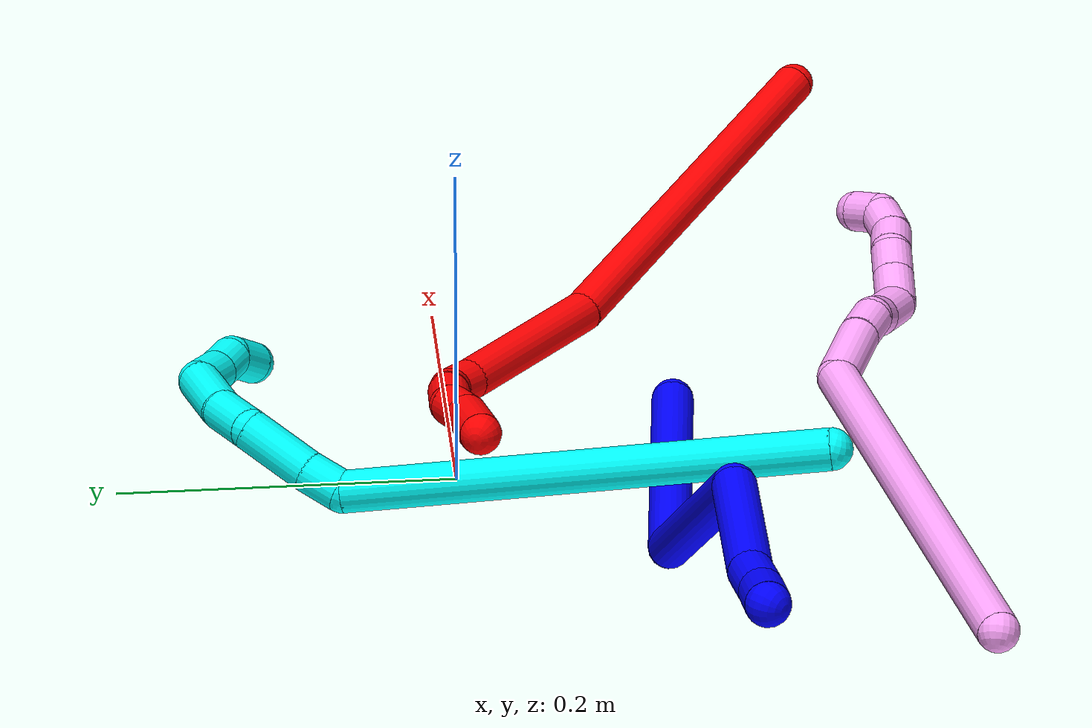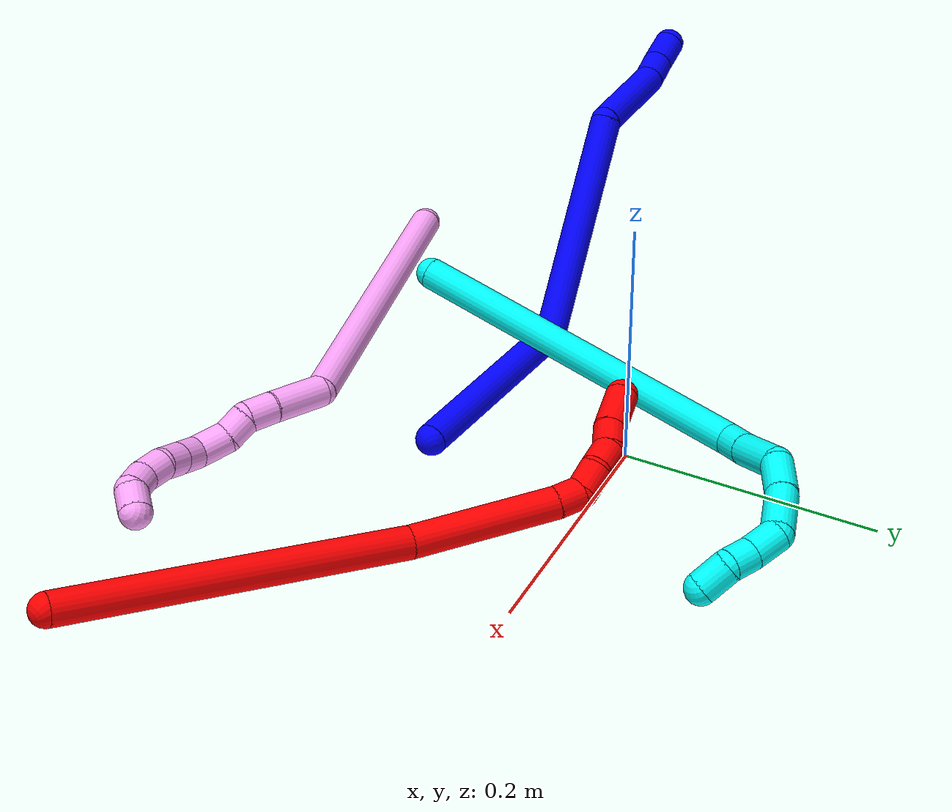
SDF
<sdf version="1.7">
 <world name="default">
  <plugin name="TubeGeneratorPlugin" filename="libtube_generator_plugin.so"/>
  <model name="photoneo_s_sensor">
   <static>1</static>
   <pose>0 0 2 1.57079 1.57079 3.14159</pose>
   <link name="link">
    <inertial><mass>0.1</mass></inertial>
    <sensor name="sensor" type="depth">
     <update_rate>30</update_rate>
     <camera>
      <horizontal_fov>1.22</horizontal_fov>
      <image><width>1920</width><height>1200</height><format>B8G8R8</format></image>
      <clip><near>0.1</near><far>4</far></clip>
      <depth_camera><output>points</output></depth_camera>
     </camera>
     <plugin name="camera_plugin" filename="libgazebo_ros_depth_camera.so">
      <baseline>0.2</baseline>
      <alwaysOn>1</alwaysOn>
      <updateRate>0.0</updateRate>
      <cameraName>camera_ir</cameraName>
      <imageTopicName>/camera/color/image_raw</imageTopicName>
      <cameraInfoTopicName>/camera/color/camera_info</cameraInfoTopicName>
      <depthImageTopicName>/camera/depth/image_raw</depthImageTopicName>
      <depthImageCameraInfoTopicName>/camera/depth/camera_info</depthImageCameraInfoTopicName>
      <pointCloudTopicName>/camera/depth/points</pointCloudTopicName>
      <frameName>fr_optical</frameName>
      <pointCloudCutoff>0.1</pointCloudCutoff>
      <pointCloudCutoffMax>2.0</pointCloudCutoffMax>
      <distortionK1>0</distortionK1>
      <distortionK2>0</distortionK2>
      <distortionK3>0</distortionK3>
      <distortionT1>0</distortionT1>
      <distortionT2>0</distortionT2>
      <CxPrime>0</CxPrime>
      <Cx>0</Cx>
      <Cy>0</Cy>
      <focalLength>0</focalLength>
      <hackBaseline>0</hackBaseline>
     </plugin>
    </sensor>
   </link>
  </model>
  <gravity>0 0 -9.8</gravity>
  <magnetic_field>6e-06 2.3e-05 -4.2e-05</magnetic_field>
  <atmosphere type="adiabatic"/>
  <physics name="default_physics" default="0" type="ode">
   <max_step_size>0.003</max_step_size>
   <real_time_factor>1</real_time_factor>
   <real_time_update_rate>1000</real_time_update_rate>
   <max_contacts>10000</max_contacts>
   <ode>
    <solver>
     <type>quick</type>
     <iters>100</iters>
     <sor>1.3</sor>
     <use_dynamic_moi_rescaling>0</use_dynamic_moi_rescaling>
    </solver>
    <constraints>
     <contact_max_correcting_vel>0</contact_max_correcting_vel>
     <contact_surface_layer>0.001</contact_surface_layer>
     <cfm>0</cfm>
     <erp>0.2</erp>
    </constraints>
   </ode>
  </physics>
  <scene><ambient>0.4 0.4 0.4 1</ambient><background>0.7 0.7 0.7 1</background><shadows>0</shadows></scene>
  <audio><device>default</device></audio>
  <spherical_coordinates>
   <surface_model>EARTH_WGS84</surface_model>
   <latitude_deg>0</latitude_deg>
   <longitude_deg>0</longitude_deg>
   <elevation>0</elevation>
   <heading_deg>0</heading_deg>
  </spherical_coordinates>
  <model name="bin">
   <static>1</static>
   <link name="bottom">
    <collision name="collision-bottom">
     <pose>0 0 -0.01 0 -0 0</pose>
     <geometry><box><size>0.8 0.6 0.02</size></box></geometry>
     <surface>
      <friction><ode><mu>100</mu><mu2>100</mu2></ode></friction>
      <contact><collide_bitmask>65535</collide_bitmask></contact>
     </surface>
    </collision>
   </link>
   <link name="west_wall">
    <collision name="collision-west_wall">
     <pose>-0.41 0 0.1 0 -0 0</pose>
     <geometry><box><size>0.02 0.6 0.2</size></box></geometry>
     <surface>
      <friction><ode><mu>100</mu><mu2>100</mu2></ode></friction>
      <contact><collide_bitmask>65535</collide_bitmask></contact>
     </surface>
    </collision>
   </link>
   <link name="east_wall">
    <collision name="collision-east_wall">
     <pose>0.41 0 0.1 0 -0 0</pose>
     <geometry><box><size>0.02 0.6 0.2</size></box></geometry>
     <surface>
      <friction><ode><mu>100</mu><mu2>100</mu2></ode></friction>
      <contact><collide_bitmask>65535</collide_bitmask></contact>
     </surface>
    </collision>
   </link>
   <link name="south_wall">
    <collision name="collision-south_wall">
     <pose>0 -0.31 0.1 0 -0 0</pose>
     <geometry><box><size>0.8 0.02 0.2</size></box></geometry>
     <surface>
      <friction><ode><mu>100</mu><mu2>100</mu2></ode></friction>
      <contact><collide_bitmask>65535</collide_bitmask></contact>
     </surface>
    </collision>
   </link>
   <link name="north_wall">
    <collision name="collision-north_wall">
     <pose>0 0.31 0.1 0 -0 0</pose>
     <geometry><box><size>0.8 0.02 0.2</size></box></geometry>
     <surface>
      <friction><ode><mu>100</mu><mu2>100</mu2></ode></friction>
      <contact><collide_bitmask>65535</collide_bitmask></contact>
     </surface>
    </collision>
   </link>
  </model>
  <model name="1">
   <static>0</static>
   <link name="1">
    <collision name="collision-cylinder-e_1_1_4">
     <pose>-0.056286 -0.034801 0.053306 0.578381 -0.723989 -0.224393</pose>
     <geometry><cylinder><radius>0.0125</radius><length>0.16995</length></cylinder></geometry>
     <surface>
      <friction><ode><mu>1.16</mu><mu2>1.16</mu2><slip1>0</slip1><slip2>0</slip2></ode></friction>
      <contact><ode><kp>1e+06</kp><kd>1</kd><max_vel>0</max_vel><min_depth>0.001</min_depth></ode></contact>
     </surface>
    </collision>
    <visual name="visual-cylinder-e_1_1_4">
     <pose>-0.056286 -0.034801 0.053306 0.578381 -0.723989 -0.224393</pose>
     <geometry><cylinder><radius>0.0125</radius><length>0.16995</length></cylinder></geometry>
     <material><ambient>0 0 1 1</ambient></material>
    </visual>
    <collision name="collision-cylinder-e_2_4_5">
     <pose>-0.181496 -0.039552 0.16465 -0.477763 -0.811969 0.208612</pose>
     <geometry><cylinder><radius>0.0125</radius><length>0.189968</length></cylinder></geometry>
     <surface>
      <friction><ode><mu>1.16</mu><mu2>1.16</mu2><slip1>0</slip1><slip2>0</slip2></ode></friction>
      <contact><ode><kp>1e+06</kp><kd>1</kd><max_vel>0</max_vel><min_depth>0.001</min_depth></ode></contact>
     </surface>
    </collision>
    <visual name="visual-cylinder-e_2_4_5">
     <pose>-0.181496 -0.039552 0.16465 -0.477763 -0.811969 0.208612</pose>
     <geometry><cylinder><radius>0.0125</radius><length>0.189968</length></cylinder></geometry>
     <material><ambient>0 0 1 1</ambient></material>
    </visual>
    <collision name="collision-cylinder-e_3_5_6">
     <pose>-0.276497 -0.026378 0.253266 0.504272 -0.641344 -0.170712</pose>
     <geometry><cylinder><radius>0.0125</radius><length>0.087175</length></cylinder></geometry>
     <surface>
      <friction><ode><mu>1.16</mu><mu2>1.16</mu2><slip1>0</slip1><slip2>0</slip2></ode></friction>
      <contact><ode><kp>1e+06</kp><kd>1</kd><max_vel>0</max_vel><min_depth>0.001</min_depth></ode></contact>
     </surface>
    </collision>
    <visual name="visual-cylinder-e_3_5_6">
     <pose>-0.276497 -0.026378 0.253266 0.504272 -0.641344 -0.170712</pose>
     <geometry><cylinder><radius>0.0125</radius><length>0.087175</length></cylinder></geometry>
     <material><ambient>0 0 1 1</ambient></material>
    </visual>
    <collision name="collision-cylinder-e_4_6_7">
     <pose>-0.310118 -0.045871 0.293821 0.256671 -0.63148 -0.08426</pose>
     <geometry><cylinder><radius>0.0125</radius><length>0.025556</length></cylinder></geometry>
     <surface>
      <friction><ode><mu>1.16</mu><mu2>1.16</mu2><slip1>0</slip1><slip2>0</slip2></ode></friction>
      <contact><ode><kp>1e+06</kp><kd>1</kd><max_vel>0</max_vel><min_depth>0.001</min_depth></ode></contact>
     </surface>
    </collision>
    <visual name="visual-cylinder-e_4_6_7">
     <pose>-0.310118 -0.045871 0.293821 0.256671 -0.63148 -0.08426</pose>
     <geometry><cylinder><radius>0.0125</radius><length>0.025556</length></cylinder></geometry>
     <material><ambient>0 0 1 1</ambient></material>
    </visual>
    <collision name="collision-cylinder-e_5_7_2">
     <pose>-0.327346 -0.050132 0.313312 0.170937 -0.786934 -0.071102</pose>
     <geometry><cylinder><radius>0.0125</radius><length>0.027351</length></cylinder></geometry>
     <surface>
      <friction><ode><mu>1.16</mu><mu2>1.16</mu2><slip1>0</slip1><slip2>0</slip2></ode></friction>
      <contact><ode><kp>1e+06</kp><kd>1</kd><max_vel>0</max_vel><min_depth>0.001</min_depth></ode></contact>
     </surface>
    </collision>
    <visual name="visual-cylinder-e_5_7_2">
     <pose>-0.327346 -0.050132 0.313312 0.170937 -0.786934 -0.071102</pose>
     <geometry><cylinder><radius>0.0125</radius><length>0.027351</length></cylinder></geometry>
     <material><ambient>0 0 1 1</ambient></material>
    </visual>
    <collision name="collision-sphere-2">
     <pose>-0.337031 -0.051774 0.322826 0 -0 0</pose>
     <geometry><sphere><radius>0.0125</radius></sphere></geometry>
     <surface>
      <friction><ode><mu>1.16</mu><mu2>1.16</mu2><slip1>0</slip1><slip2>0</slip2></ode></friction>
      <contact><ode><kp>1e+06</kp><kd>1</kd><max_vel>0</max_vel><min_depth>0.001</min_depth></ode></contact>
     </surface>
    </collision>
    <visual name="visual-sphere-2">
     <pose>-0.337031 -0.051774 0.322826 0 -0 0</pose>
     <geometry><sphere><radius>0.0125</radius></sphere></geometry>
     <material><ambient>0 0 1 1</ambient></material>
    </visual>
    <collision name="collision-sphere-7">
     <pose>-0.317661 -0.048489 0.303797 0 -0 0</pose>
     <geometry><sphere><radius>0.0125</radius></sphere></geometry>
     <surface>
      <friction><ode><mu>1.16</mu><mu2>1.16</mu2><slip1>0</slip1><slip2>0</slip2></ode></friction>
      <contact><ode><kp>1e+06</kp><kd>1</kd><max_vel>0</max_vel><min_depth>0.001</min_depth></ode></contact>
     </surface>
    </collision>
    <visual name="visual-sphere-7">
     <pose>-0.317661 -0.048489 0.303797 0 -0 0</pose>
     <geometry><sphere><radius>0.0125</radius></sphere></geometry>
     <material><ambient>0 0 1 1</ambient></material>
    </visual>
    <collision name="collision-sphere-6">
     <pose>-0.302575 -0.043253 0.283845 0 -0 0</pose>
     <geometry><sphere><radius>0.0125</radius></sphere></geometry>
     <surface>
      <friction><ode><mu>1.16</mu><mu2>1.16</mu2><slip1>0</slip1><slip2>0</slip2></ode></friction>
      <contact><ode><kp>1e+06</kp><kd>1</kd><max_vel>0</max_vel><min_depth>0.001</min_depth></ode></contact>
     </surface>
    </collision>
    <visual name="visual-sphere-6">
     <pose>-0.302575 -0.043253 0.283845 0 -0 0</pose>
     <geometry><sphere><radius>0.0125</radius></sphere></geometry>
     <material><ambient>0 0 1 1</ambient></material>
    </visual>
    <collision name="collision-sphere-5">
     <pose>-0.25042 -0.009502 0.222687 0 -0 0</pose>
     <geometry><sphere><radius>0.0125</radius></sphere></geometry>
     <surface>
      <friction><ode><mu>1.16</mu><mu2>1.16</mu2><slip1>0</slip1><slip2>0</slip2></ode></friction>
      <contact><ode><kp>1e+06</kp><kd>1</kd><max_vel>0</max_vel><min_depth>0.001</min_depth></ode></contact>
     </surface>
    </collision>
    <visual name="visual-sphere-5">
     <pose>-0.25042 -0.009502 0.222687 0 -0 0</pose>
     <geometry><sphere><radius>0.0125</radius></sphere></geometry>
     <material><ambient>0 0 1 1</ambient></material>
    </visual>
    <collision name="collision-sphere-1">
     <geometry><sphere><radius>0.0125</radius></sphere></geometry>
     <surface>
      <friction><ode><mu>1.16</mu><mu2>1.16</mu2><slip1>0</slip1><slip2>0</slip2></ode></friction>
      <contact><ode><kp>1e+06</kp><kd>1</kd><max_vel>0</max_vel><min_depth>0.001</min_depth></ode></contact>
     </surface>
    </collision>
    <visual name="visual-sphere-1">
     <geometry><sphere><radius>0.0125</radius></sphere></geometry>
     <material><ambient>0 0 1 1</ambient></material>
    </visual>
    <collision name="collision-sphere-4">
     <pose>-0.112571 -0.069603 0.106612 0 -0 0</pose>
     <geometry><sphere><radius>0.0125</radius></sphere></geometry>
     <surface>
      <friction><ode><mu>1.16</mu><mu2>1.16</mu2><slip1>0</slip1><slip2>0</slip2></ode></friction>
      <contact><ode><kp>1e+06</kp><kd>1</kd><max_vel>0</max_vel><min_depth>0.001</min_depth></ode></contact>
     </surface>
    </collision>
    <visual name="visual-sphere-4">
     <pose>-0.112571 -0.069603 0.106612 0 -0 0</pose>
     <geometry><sphere><radius>0.0125</radius></sphere></geometry>
     <material><ambient>0 0 1 1</ambient></material>
    </visual>
    <inertial>
     <pose>-0.170053 -0.036542 0.156989 0 -0 0</pose>
     <mass>0.5</mass>
     <inertia>
      <ixx>0.000722</ixx>
      <ixy>0</ixy>
      <ixz>0</ixz>
      <iyy>0.000975</iyy>
      <iyz>0</iyz>
      <izz>0.00077</izz>
     </inertia>
    </inertial>
   </link>
   <pose>0.062273 -0.133769 0.012396 1.56387 0.542197 -0.79775</pose>
  </model>
  <model name="2">
   <static>0</static>
   <link name="2">
    <collision name="collision-cylinder-e_1_1_4">
     <pose>-0.017727 -0.054777 -0.120022 2.71344 -0.133564 -0.596884</pose>
     <geometry><cylinder><radius>0.0125</radius><length>0.266233</length></cylinder></geometry>
     <surface>
      <friction><ode><mu>1.16</mu><mu2>1.16</mu2><slip1>0</slip1><slip2>0</slip2></ode></friction>
      <contact><ode><kp>1e+06</kp><kd>1</kd><max_vel>0</max_vel><min_depth>0.001</min_depth></ode></contact>
     </surface>
    </collision>
    <visual name="visual-cylinder-e_1_1_4">
     <pose>-0.017727 -0.054777 -0.120022 2.71344 -0.133564 -0.596884</pose>
     <geometry><cylinder><radius>0.0125</radius><length>0.266233</length></cylinder></geometry>
     <material><ambient>1 0 0 1</ambient></material>
    </visual>
    <collision name="collision-cylinder-e_2_4_5">
     <pose>-0.030833 -0.13234 -0.29176 2.72657 0.081587 0.382971</pose>
     <geometry><cylinder><radius>0.0125</radius><length>0.113404</length></cylinder></geometry>
     <surface>
      <friction><ode><mu>1.16</mu><mu2>1.16</mu2><slip1>0</slip1><slip2>0</slip2></ode></friction>
      <contact><ode><kp>1e+06</kp><kd>1</kd><max_vel>0</max_vel><min_depth>0.001</min_depth></ode></contact>
     </surface>
    </collision>
    <visual name="visual-cylinder-e_2_4_5">
     <pose>-0.030833 -0.13234 -0.29176 2.72657 0.081587 0.382971</pose>
     <geometry><cylinder><radius>0.0125</radius><length>0.113404</length></cylinder></geometry>
     <material><ambient>1 0 0 1</ambient></material>
    </visual>
    <collision name="collision-cylinder-e_3_5_6">
     <pose>-0.024493 -0.158212 -0.353185 2.83396 0.167123 0.9906</pose>
     <geometry><cylinder><radius>0.0125</radius><length>0.020664</length></cylinder></geometry>
     <surface>
      <friction><ode><mu>1.16</mu><mu2>1.16</mu2><slip1>0</slip1><slip2>0</slip2></ode></friction>
      <contact><ode><kp>1e+06</kp><kd>1</kd><max_vel>0</max_vel><min_depth>0.001</min_depth></ode></contact>
     </surface>
    </collision>
    <visual name="visual-cylinder-e_3_5_6">
     <pose>-0.024493 -0.158212 -0.353185 2.83396 0.167123 0.9906</pose>
     <geometry><cylinder><radius>0.0125</radius><length>0.020664</length></cylinder></geometry>
     <material><ambient>1 0 0 1</ambient></material>
    </visual>
    <collision name="collision-cylinder-e_4_6_7">
     <pose>-0.021407 -0.158072 -0.37336 -2.84266 0.12422 -0.783292</pose>
     <geometry><cylinder><radius>0.0125</radius><length>0.022071</length></cylinder></geometry>
     <surface>
      <friction><ode><mu>1.16</mu><mu2>1.16</mu2><slip1>0</slip1><slip2>0</slip2></ode></friction>
      <contact><ode><kp>1e+06</kp><kd>1</kd><max_vel>0</max_vel><min_depth>0.001</min_depth></ode></contact>
     </surface>
    </collision>
    <visual name="visual-cylinder-e_4_6_7">
     <pose>-0.021407 -0.158072 -0.37336 -2.84266 0.12422 -0.783292</pose>
     <geometry><cylinder><radius>0.0125</radius><length>0.022071</length></cylinder></geometry>
     <material><ambient>1 0 0 1</ambient></material>
    </visual>
    <collision name="collision-cylinder-e_5_7_8">
     <pose>-0.021702 -0.152204 -0.393863 -2.8841 -0.158829 1.10234</pose>
     <geometry><cylinder><radius>0.0125</radius><length>0.021024</length></cylinder></geometry>
     <surface>
      <friction><ode><mu>1.16</mu><mu2>1.16</mu2><slip1>0</slip1><slip2>0</slip2></ode></friction>
      <contact><ode><kp>1e+06</kp><kd>1</kd><max_vel>0</max_vel><min_depth>0.001</min_depth></ode></contact>
     </surface>
    </collision>
    <visual name="visual-cylinder-e_5_7_8">
     <pose>-0.021702 -0.152204 -0.393863 -2.8841 -0.158829 1.10234</pose>
     <geometry><cylinder><radius>0.0125</radius><length>0.021024</length></cylinder></geometry>
     <material><ambient>1 0 0 1</ambient></material>
    </visual>
    <collision name="collision-cylinder-e_6_8_9">
     <pose>-0.026413 -0.14331 -0.411931 -2.48026 -0.291061 0.807082</pose>
     <geometry><cylinder><radius>0.0125</radius><length>0.021247</length></cylinder></geometry>
     <surface>
      <friction><ode><mu>1.16</mu><mu2>1.16</mu2><slip1>0</slip1><slip2>0</slip2></ode></friction>
      <contact><ode><kp>1e+06</kp><kd>1</kd><max_vel>0</max_vel><min_depth>0.001</min_depth></ode></contact>
     </surface>
    </collision>
    <visual name="visual-cylinder-e_6_8_9">
     <pose>-0.026413 -0.14331 -0.411931 -2.48026 -0.291061 0.807082</pose>
     <geometry><cylinder><radius>0.0125</radius><length>0.021247</length></cylinder></geometry>
     <material><ambient>1 0 0 1</ambient></material>
    </visual>
    <collision name="collision-cylinder-e_7_9_2">
     <pose>-0.033167 -0.129655 -0.435582 -2.69885 -0.211156 0.88014</pose>
     <geometry><cylinder><radius>0.0125</radius><length>0.035356</length></cylinder></geometry>
     <surface>
      <friction><ode><mu>1.16</mu><mu2>1.16</mu2><slip1>0</slip1><slip2>0</slip2></ode></friction>
      <contact><ode><kp>1e+06</kp><kd>1</kd><max_vel>0</max_vel><min_depth>0.001</min_depth></ode></contact>
     </surface>
    </collision>
    <visual name="visual-cylinder-e_7_9_2">
     <pose>-0.033167 -0.129655 -0.435582 -2.69885 -0.211156 0.88014</pose>
     <geometry><cylinder><radius>0.0125</radius><length>0.035356</length></cylinder></geometry>
     <material><ambient>1 0 0 1</ambient></material>
    </visual>
    <collision name="collision-sphere-2">
     <pose>-0.036872 -0.122249 -0.4512 0 -0 0</pose>
     <geometry><sphere><radius>0.0125</radius></sphere></geometry>
     <surface>
      <friction><ode><mu>1.16</mu><mu2>1.16</mu2><slip1>0</slip1><slip2>0</slip2></ode></friction>
      <contact><ode><kp>1e+06</kp><kd>1</kd><max_vel>0</max_vel><min_depth>0.001</min_depth></ode></contact>
     </surface>
    </collision>
    <visual name="visual-sphere-2">
     <pose>-0.036872 -0.122249 -0.4512 0 -0 0</pose>
     <geometry><sphere><radius>0.0125</radius></sphere></geometry>
     <material><ambient>1 0 0 1</ambient></material>
    </visual>
    <collision name="collision-sphere-9">
     <pose>-0.029462 -0.13706 -0.419963 0 -0 0</pose>
     <geometry><sphere><radius>0.0125</radius></sphere></geometry>
     <surface>
      <friction><ode><mu>1.16</mu><mu2>1.16</mu2><slip1>0</slip1><slip2>0</slip2></ode></friction>
      <contact><ode><kp>1e+06</kp><kd>1</kd><max_vel>0</max_vel><min_depth>0.001</min_depth></ode></contact>
     </surface>
    </collision>
    <visual name="visual-sphere-9">
     <pose>-0.029462 -0.13706 -0.419963 0 -0 0</pose>
     <geometry><sphere><radius>0.0125</radius></sphere></geometry>
     <material><ambient>1 0 0 1</ambient></material>
    </visual>
    <collision name="collision-sphere-4">
     <pose>-0.035453 -0.109553 -0.240044 0 -0 0</pose>
     <geometry><sphere><radius>0.0125</radius></sphere></geometry>
     <surface>
      <friction><ode><mu>1.16</mu><mu2>1.16</mu2><slip1>0</slip1><slip2>0</slip2></ode></friction>
      <contact><ode><kp>1e+06</kp><kd>1</kd><max_vel>0</max_vel><min_depth>0.001</min_depth></ode></contact>
     </surface>
    </collision>
    <visual name="visual-sphere-4">
     <pose>-0.035453 -0.109553 -0.240044 0 -0 0</pose>
     <geometry><sphere><radius>0.0125</radius></sphere></geometry>
     <material><ambient>1 0 0 1</ambient></material>
    </visual>
    <collision name="collision-sphere-1">
     <geometry><sphere><radius>0.0125</radius></sphere></geometry>
     <surface>
      <friction><ode><mu>1.16</mu><mu2>1.16</mu2><slip1>0</slip1><slip2>0</slip2></ode></friction>
      <contact><ode><kp>1e+06</kp><kd>1</kd><max_vel>0</max_vel><min_depth>0.001</min_depth></ode></contact>
     </surface>
    </collision>
    <visual name="visual-sphere-1">
     <geometry><sphere><radius>0.0125</radius></sphere></geometry>
     <material><ambient>1 0 0 1</ambient></material>
    </visual>
    <collision name="collision-sphere-8">
     <pose>-0.023365 -0.149561 -0.4039 0 -0 0</pose>
     <geometry><sphere><radius>0.0125</radius></sphere></geometry>
     <surface>
      <friction><ode><mu>1.16</mu><mu2>1.16</mu2><slip1>0</slip1><slip2>0</slip2></ode></friction>
      <contact><ode><kp>1e+06</kp><kd>1</kd><max_vel>0</max_vel><min_depth>0.001</min_depth></ode></contact>
     </surface>
    </collision>
    <visual name="visual-sphere-8">
     <pose>-0.023365 -0.149561 -0.4039 0 -0 0</pose>
     <geometry><sphere><radius>0.0125</radius></sphere></geometry>
     <material><ambient>1 0 0 1</ambient></material>
    </visual>
    <collision name="collision-sphere-5">
     <pose>-0.026212 -0.155127 -0.343476 0 -0 0</pose>
     <geometry><sphere><radius>0.0125</radius></sphere></geometry>
     <surface>
      <friction><ode><mu>1.16</mu><mu2>1.16</mu2><slip1>0</slip1><slip2>0</slip2></ode></friction>
      <contact><ode><kp>1e+06</kp><kd>1</kd><max_vel>0</max_vel><min_depth>0.001</min_depth></ode></contact>
     </surface>
    </collision>
    <visual name="visual-sphere-5">
     <pose>-0.026212 -0.155127 -0.343476 0 -0 0</pose>
     <geometry><sphere><radius>0.0125</radius></sphere></geometry>
     <material><ambient>1 0 0 1</ambient></material>
    </visual>
    <collision name="collision-sphere-6">
     <pose>-0.022774 -0.161297 -0.362895 0 -0 0</pose>
     <geometry><sphere><radius>0.0125</radius></sphere></geometry>
     <surface>
      <friction><ode><mu>1.16</mu><mu2>1.16</mu2><slip1>0</slip1><slip2>0</slip2></ode></friction>
      <contact><ode><kp>1e+06</kp><kd>1</kd><max_vel>0</max_vel><min_depth>0.001</min_depth></ode></contact>
     </surface>
    </collision>
    <visual name="visual-sphere-6">
     <pose>-0.022774 -0.161297 -0.362895 0 -0 0</pose>
     <geometry><sphere><radius>0.0125</radius></sphere></geometry>
     <material><ambient>1 0 0 1</ambient></material>
    </visual>
    <collision name="collision-sphere-7">
     <pose>-0.02004 -0.154847 -0.383825 0 -0 0</pose>
     <geometry><sphere><radius>0.0125</radius></sphere></geometry>
     <surface>
      <friction><ode><mu>1.16</mu><mu2>1.16</mu2><slip1>0</slip1><slip2>0</slip2></ode></friction>
      <contact><ode><kp>1e+06</kp><kd>1</kd><max_vel>0</max_vel><min_depth>0.001</min_depth></ode></contact>
     </surface>
    </collision>
    <visual name="visual-sphere-7">
     <pose>-0.02004 -0.154847 -0.383825 0 -0 0</pose>
     <geometry><sphere><radius>0.0125</radius></sphere></geometry>
     <material><ambient>1 0 0 1</ambient></material>
    </visual>
    <inertial>
     <pose>-0.022769 -0.094357 -0.226026 0 -0 0</pose>
     <mass>0.5</mass>
     <inertia>
      <ixx>0.00059</ixx>
      <ixy>0</ixy>
      <ixz>0</ixz>
      <iyy>-0.002091</iyy>
      <iyz>0</iyz>
      <izz>0.000865</izz>
     </inertia>
    </inertial>
   </link>
   <pose>0.388501 -0.245658 0.055559 1.90335 -1.01977 0.950871</pose>
  </model>
  <model name="3">
   <static>0</static>
   <link name="3">
    <collision name="collision-cylinder-e_1_1_4">
     <pose>0.01966 0.128923 -0.058923 -1.99949 0.137818 -0.214039</pose>
     <geometry><cylinder><radius>0.0125</radius><length>0.286214</length></cylinder></geometry>
     <surface>
      <friction><ode><mu>1.16</mu><mu2>1.16</mu2><slip1>0</slip1><slip2>0</slip2></ode></friction>
      <contact><ode><kp>1e+06</kp><kd>1</kd><max_vel>0</max_vel><min_depth>0.001</min_depth></ode></contact>
     </surface>
    </collision>
    <visual name="visual-cylinder-e_1_1_4">
     <pose>0.01966 0.128923 -0.058923 -1.99949 0.137818 -0.214039</pose>
     <geometry><cylinder><radius>0.0125</radius><length>0.286214</length></cylinder></geometry>
     <material><ambient>0.003922 1 0.996078 1</ambient></material>
    </visual>
    <collision name="collision-cylinder-e_2_4_5">
     <pose>0.04419 0.268943 -0.116043 -1.40968 0.408697 -0.348971</pose>
     <geometry><cylinder><radius>0.0125</radius><length>0.024504</length></cylinder></geometry>
     <surface>
      <friction><ode><mu>1.16</mu><mu2>1.16</mu2><slip1>0</slip1><slip2>0</slip2></ode></friction>
      <contact><ode><kp>1e+06</kp><kd>1</kd><max_vel>0</max_vel><min_depth>0.001</min_depth></ode></contact>
     </surface>
    </collision>
    <visual name="visual-cylinder-e_2_4_5">
     <pose>0.04419 0.268943 -0.116043 -1.40968 0.408697 -0.348971</pose>
     <geometry><cylinder><radius>0.0125</radius><length>0.024504</length></cylinder></geometry>
     <material><ambient>0.003922 1 0.996078 1</ambient></material>
    </visual>
    <collision name="collision-cylinder-e_3_5_6">
     <pose>0.05662 0.300013 -0.108931 -1.31103 0.350721 -0.270814</pose>
     <geometry><cylinder><radius>0.0125</radius><length>0.044011</length></cylinder></geometry>
     <surface>
      <friction><ode><mu>1.16</mu><mu2>1.16</mu2><slip1>0</slip1><slip2>0</slip2></ode></friction>
      <contact><ode><kp>1e+06</kp><kd>1</kd><max_vel>0</max_vel><min_depth>0.001</min_depth></ode></contact>
     </surface>
    </collision>
    <visual name="visual-cylinder-e_3_5_6">
     <pose>0.05662 0.300013 -0.108931 -1.31103 0.350721 -0.270814</pose>
     <geometry><cylinder><radius>0.0125</radius><length>0.044011</length></cylinder></geometry>
     <material><ambient>0.003922 1 0.996078 1</ambient></material>
    </visual>
    <collision name="collision-cylinder-e_4_6_7">
     <pose>0.077767 0.32932 -0.102804 -1.48327 0.96703 -0.896709</pose>
     <geometry><cylinder><radius>0.0125</radius><length>0.033009</length></cylinder></geometry>
     <surface>
      <friction><ode><mu>1.16</mu><mu2>1.16</mu2><slip1>0</slip1><slip2>0</slip2></ode></friction>
      <contact><ode><kp>1e+06</kp><kd>1</kd><max_vel>0</max_vel><min_depth>0.001</min_depth></ode></contact>
     </surface>
    </collision>
    <visual name="visual-cylinder-e_4_6_7">
     <pose>0.077767 0.32932 -0.102804 -1.48327 0.96703 -0.896709</pose>
     <geometry><cylinder><radius>0.0125</radius><length>0.033009</length></cylinder></geometry>
     <material><ambient>0.003922 1 0.996078 1</ambient></material>
    </visual>
    <collision name="collision-cylinder-e_5_7_8">
     <pose>0.11027 0.347458 -0.098783 -1.22199 1.11098 -0.820163</pose>
     <geometry><cylinder><radius>0.0125</radius><length>0.042218</length></cylinder></geometry>
     <surface>
      <friction><ode><mu>1.16</mu><mu2>1.16</mu2><slip1>0</slip1><slip2>0</slip2></ode></friction>
      <contact><ode><kp>1e+06</kp><kd>1</kd><max_vel>0</max_vel><min_depth>0.001</min_depth></ode></contact>
     </surface>
    </collision>
    <visual name="visual-cylinder-e_5_7_8">
     <pose>0.11027 0.347458 -0.098783 -1.22199 1.11098 -0.820163</pose>
     <geometry><cylinder><radius>0.0125</radius><length>0.042218</length></cylinder></geometry>
     <material><ambient>0.003922 1 0.996078 1</ambient></material>
    </visual>
    <collision name="collision-cylinder-e_6_8_9">
     <pose>0.140746 0.352133 -0.092634 0.9509 1.15729 0.648858</pose>
     <geometry><cylinder><radius>0.0125</radius><length>0.025248</length></cylinder></geometry>
     <surface>
      <friction><ode><mu>1.16</mu><mu2>1.16</mu2><slip1>0</slip1><slip2>0</slip2></ode></friction>
      <contact><ode><kp>1e+06</kp><kd>1</kd><max_vel>0</max_vel><min_depth>0.001</min_depth></ode></contact>
     </surface>
    </collision>
    <visual name="visual-cylinder-e_6_8_9">
     <pose>0.140746 0.352133 -0.092634 0.9509 1.15729 0.648858</pose>
     <geometry><cylinder><radius>0.0125</radius><length>0.025248</length></cylinder></geometry>
     <material><ambient>0.003922 1 0.996078 1</ambient></material>
    </visual>
    <collision name="collision-cylinder-e_7_9_10">
     <pose>0.161081 0.345137 -0.085636 0.616074 1.05602 0.366961</pose>
     <geometry><cylinder><radius>0.0125</radius><length>0.020162</length></cylinder></geometry>
     <surface>
      <friction><ode><mu>1.16</mu><mu2>1.16</mu2><slip1>0</slip1><slip2>0</slip2></ode></friction>
      <contact><ode><kp>1e+06</kp><kd>1</kd><max_vel>0</max_vel><min_depth>0.001</min_depth></ode></contact>
     </surface>
    </collision>
    <visual name="visual-cylinder-e_7_9_10">
     <pose>0.161081 0.345137 -0.085636 0.616074 1.05602 0.366961</pose>
     <geometry><cylinder><radius>0.0125</radius><length>0.020162</length></cylinder></geometry>
     <material><ambient>0.003922 1 0.996078 1</ambient></material>
    </visual>
    <collision name="collision-cylinder-e_8_10_2">
     <pose>0.180012 0.33543 -0.082921 1.76367 0.969465 1.13784</pose>
     <geometry><cylinder><radius>0.0125</radius><length>0.024634</length></cylinder></geometry>
     <surface>
      <friction><ode><mu>1.16</mu><mu2>1.16</mu2><slip1>0</slip1><slip2>0</slip2></ode></friction>
      <contact><ode><kp>1e+06</kp><kd>1</kd><max_vel>0</max_vel><min_depth>0.001</min_depth></ode></contact>
     </surface>
    </collision>
    <visual name="visual-cylinder-e_8_10_2">
     <pose>0.180012 0.33543 -0.082921 1.76367 0.969465 1.13784</pose>
     <geometry><cylinder><radius>0.0125</radius><length>0.024634</length></cylinder></geometry>
     <material><ambient>0.003922 1 0.996078 1</ambient></material>
    </visual>
    <collision name="collision-sphere-2">
     <pose>0.190168 0.328591 -0.084257 0 -0 0</pose>
     <geometry><sphere><radius>0.0125</radius></sphere></geometry>
     <surface>
      <friction><ode><mu>1.16</mu><mu2>1.16</mu2><slip1>0</slip1><slip2>0</slip2></ode></friction>
      <contact><ode><kp>1e+06</kp><kd>1</kd><max_vel>0</max_vel><min_depth>0.001</min_depth></ode></contact>
     </surface>
    </collision>
    <visual name="visual-sphere-2">
     <pose>0.190168 0.328591 -0.084257 0 -0 0</pose>
     <geometry><sphere><radius>0.0125</radius></sphere></geometry>
     <material><ambient>0.003922 1 0.996078 1</ambient></material>
    </visual>
    <collision name="collision-sphere-10">
     <pose>0.169855 0.342269 -0.081586 0 -0 0</pose>
     <geometry><sphere><radius>0.0125</radius></sphere></geometry>
     <surface>
      <friction><ode><mu>1.16</mu><mu2>1.16</mu2><slip1>0</slip1><slip2>0</slip2></ode></friction>
      <contact><ode><kp>1e+06</kp><kd>1</kd><max_vel>0</max_vel><min_depth>0.001</min_depth></ode></contact>
     </surface>
    </collision>
    <visual name="visual-sphere-10">
     <pose>0.169855 0.342269 -0.081586 0 -0 0</pose>
     <geometry><sphere><radius>0.0125</radius></sphere></geometry>
     <material><ambient>0.003922 1 0.996078 1</ambient></material>
    </visual>
    <collision name="collision-sphere-9">
     <pose>0.152306 0.348005 -0.089687 0 -0 0</pose>
     <geometry><sphere><radius>0.0125</radius></sphere></geometry>
     <surface>
      <friction><ode><mu>1.16</mu><mu2>1.16</mu2><slip1>0</slip1><slip2>0</slip2></ode></friction>
      <contact><ode><kp>1e+06</kp><kd>1</kd><max_vel>0</max_vel><min_depth>0.001</min_depth></ode></contact>
     </surface>
    </collision>
    <visual name="visual-sphere-9">
     <pose>0.152306 0.348005 -0.089687 0 -0 0</pose>
     <geometry><sphere><radius>0.0125</radius></sphere></geometry>
     <material><ambient>0.003922 1 0.996078 1</ambient></material>
    </visual>
    <collision name="collision-sphere-4">
     <pose>0.039321 0.257846 -0.117847 0 -0 0</pose>
     <geometry><sphere><radius>0.0125</radius></sphere></geometry>
     <surface>
      <friction><ode><mu>1.16</mu><mu2>1.16</mu2><slip1>0</slip1><slip2>0</slip2></ode></friction>
      <contact><ode><kp>1e+06</kp><kd>1</kd><max_vel>0</max_vel><min_depth>0.001</min_depth></ode></contact>
     </surface>
    </collision>
    <visual name="visual-sphere-4">
     <pose>0.039321 0.257846 -0.117847 0 -0 0</pose>
     <geometry><sphere><radius>0.0125</radius></sphere></geometry>
     <material><ambient>0.003922 1 0.996078 1</ambient></material>
    </visual>
    <collision name="collision-sphere-1">
     <geometry><sphere><radius>0.0125</radius></sphere></geometry>
     <surface>
      <friction><ode><mu>1.16</mu><mu2>1.16</mu2><slip1>0</slip1><slip2>0</slip2></ode></friction>
      <contact><ode><kp>1e+06</kp><kd>1</kd><max_vel>0</max_vel><min_depth>0.001</min_depth></ode></contact>
     </surface>
    </collision>
    <visual name="visual-sphere-1">
     <geometry><sphere><radius>0.0125</radius></sphere></geometry>
     <material><ambient>0.003922 1 0.996078 1</ambient></material>
    </visual>
    <collision name="collision-sphere-8">
     <pose>0.129186 0.356262 -0.095581 0 -0 0</pose>
     <geometry><sphere><radius>0.0125</radius></sphere></geometry>
     <surface>
      <friction><ode><mu>1.16</mu><mu2>1.16</mu2><slip1>0</slip1><slip2>0</slip2></ode></friction>
      <contact><ode><kp>1e+06</kp><kd>1</kd><max_vel>0</max_vel><min_depth>0.001</min_depth></ode></contact>
     </surface>
    </collision>
    <visual name="visual-sphere-8">
     <pose>0.129186 0.356262 -0.095581 0 -0 0</pose>
     <geometry><sphere><radius>0.0125</radius></sphere></geometry>
     <material><ambient>0.003922 1 0.996078 1</ambient></material>
    </visual>
    <collision name="collision-sphere-5">
     <pose>0.049059 0.28004 -0.114239 0 -0 0</pose>
     <geometry><sphere><radius>0.0125</radius></sphere></geometry>
     <surface>
      <friction><ode><mu>1.16</mu><mu2>1.16</mu2><slip1>0</slip1><slip2>0</slip2></ode></friction>
      <contact><ode><kp>1e+06</kp><kd>1</kd><max_vel>0</max_vel><min_depth>0.001</min_depth></ode></contact>
     </surface>
    </collision>
    <visual name="visual-sphere-5">
     <pose>0.049059 0.28004 -0.114239 0 -0 0</pose>
     <geometry><sphere><radius>0.0125</radius></sphere></geometry>
     <material><ambient>0.003922 1 0.996078 1</ambient></material>
    </visual>
    <collision name="collision-sphere-6">
     <pose>0.06418 0.319986 -0.103623 0 -0 0</pose>
     <geometry><sphere><radius>0.0125</radius></sphere></geometry>
     <surface>
      <friction><ode><mu>1.16</mu><mu2>1.16</mu2><slip1>0</slip1><slip2>0</slip2></ode></friction>
      <contact><ode><kp>1e+06</kp><kd>1</kd><max_vel>0</max_vel><min_depth>0.001</min_depth></ode></contact>
     </surface>
    </collision>
    <visual name="visual-sphere-6">
     <pose>0.06418 0.319986 -0.103623 0 -0 0</pose>
     <geometry><sphere><radius>0.0125</radius></sphere></geometry>
     <material><ambient>0.003922 1 0.996078 1</ambient></material>
    </visual>
    <collision name="collision-sphere-7">
     <pose>0.091353 0.338655 -0.101984 0 -0 0</pose>
     <geometry><sphere><radius>0.0125</radius></sphere></geometry>
     <surface>
      <friction><ode><mu>1.16</mu><mu2>1.16</mu2><slip1>0</slip1><slip2>0</slip2></ode></friction>
      <contact><ode><kp>1e+06</kp><kd>1</kd><max_vel>0</max_vel><min_depth>0.001</min_depth></ode></contact>
     </surface>
    </collision>
    <visual name="visual-sphere-7">
     <pose>0.091353 0.338655 -0.101984 0 -0 0</pose>
     <geometry><sphere><radius>0.0125</radius></sphere></geometry>
     <material><ambient>0.003922 1 0.996078 1</ambient></material>
    </visual>
    <inertial>
     <pose>0.05532 0.212691 -0.076349 0 -0 0</pose>
     <mass>0.5</mass>
     <inertia>
      <ixx>0.001514</ixx>
      <ixy>0</ixy>
      <ixz>0</ixz>
      <iyy>-0.001121</iyy>
      <iyz>0</iyz>
      <izz>-0.00208</izz>
     </inertia>
    </inertial>
   </link>
   <pose>-0.082074 -0.209698 0.057567 0.323174 0.367483 -0.075224</pose>
  </model>
  <model name="4">
   <static>0</static>
   <link name="4">
    <collision name="collision-cylinder-e_1_1_4">
     <pose>0.101277 -0.002772 -0.096475 3.11286 0.80947 3.07455</pose>
     <geometry><cylinder><radius>0.0125</radius><length>0.279802</length></cylinder></geometry>
     <surface>
      <friction><ode><mu>1.16</mu><mu2>1.16</mu2><slip1>0</slip1><slip2>0</slip2></ode></friction>
      <contact><ode><kp>1e+06</kp><kd>1</kd><max_vel>0</max_vel><min_depth>0.001</min_depth></ode></contact>
     </surface>
    </collision>
    <visual name="visual-cylinder-e_1_1_4">
     <pose>0.101277 -0.002772 -0.096475 3.11286 0.80947 3.07455</pose>
     <geometry><cylinder><radius>0.0125</radius><length>0.279802</length></cylinder></geometry>
     <material><ambient>1 0.65098 0.996078 1</ambient></material>
    </visual>
    <collision name="collision-cylinder-e_2_4_5">
     <pose>0.211466 0.005315 -0.210894 -2.59732 0.401753 -1.26073</pose>
     <geometry><cylinder><radius>0.0125</radius><length>0.045576</length></cylinder></geometry>
     <surface>
      <friction><ode><mu>1.16</mu><mu2>1.16</mu2><slip1>0</slip1><slip2>0</slip2></ode></friction>
      <contact><ode><kp>1e+06</kp><kd>1</kd><max_vel>0</max_vel><min_depth>0.001</min_depth></ode></contact>
     </surface>
    </collision>
    <visual name="visual-cylinder-e_2_4_5">
     <pose>0.211466 0.005315 -0.210894 -2.59732 0.401753 -1.26073</pose>
     <geometry><cylinder><radius>0.0125</radius><length>0.045576</length></cylinder></geometry>
     <material><ambient>1 0.65098 0.996078 1</ambient></material>
    </visual>
    <collision name="collision-cylinder-e_3_5_6">
     <pose>0.225141 0.022723 -0.237348 -2.48587 0.417575 -1.11419</pose>
     <geometry><cylinder><radius>0.0125</radius><length>0.023496</length></cylinder></geometry>
     <surface>
      <friction><ode><mu>1.16</mu><mu2>1.16</mu2><slip1>0</slip1><slip2>0</slip2></ode></friction>
      <contact><ode><kp>1e+06</kp><kd>1</kd><max_vel>0</max_vel><min_depth>0.001</min_depth></ode></contact>
     </surface>
    </collision>
    <visual name="visual-cylinder-e_3_5_6">
     <pose>0.225141 0.022723 -0.237348 -2.48587 0.417575 -1.11419</pose>
     <geometry><cylinder><radius>0.0125</radius><length>0.023496</length></cylinder></geometry>
     <material><ambient>1 0.65098 0.996078 1</ambient></material>
    </visual>
    <collision name="collision-cylinder-e_4_6_7">
     <pose>0.237076 0.035561 -0.249335 -2.07554 0.784319 -1.22279</pose>
     <geometry><cylinder><radius>0.0125</radius><length>0.020305</length></cylinder></geometry>
     <surface>
      <friction><ode><mu>1.16</mu><mu2>1.16</mu2><slip1>0</slip1><slip2>0</slip2></ode></friction>
      <contact><ode><kp>1e+06</kp><kd>1</kd><max_vel>0</max_vel><min_depth>0.001</min_depth></ode></contact>
     </surface>
    </collision>
    <visual name="visual-cylinder-e_4_6_7">
     <pose>0.237076 0.035561 -0.249335 -2.07554 0.784319 -1.22279</pose>
     <geometry><cylinder><radius>0.0125</radius><length>0.020305</length></cylinder></geometry>
     <material><ambient>1 0.65098 0.996078 1</ambient></material>
    </visual>
    <collision name="collision-cylinder-e_5_7_8">
     <pose>0.250412 0.050939 -0.260334 -2.26234 0.481506 -0.962203</pose>
     <geometry><cylinder><radius>0.0125</radius><length>0.026623</length></cylinder></geometry>
     <surface>
      <friction><ode><mu>1.16</mu><mu2>1.16</mu2><slip1>0</slip1><slip2>0</slip2></ode></friction>
      <contact><ode><kp>1e+06</kp><kd>1</kd><max_vel>0</max_vel><min_depth>0.001</min_depth></ode></contact>
     </surface>
    </collision>
    <visual name="visual-cylinder-e_5_7_8">
     <pose>0.250412 0.050939 -0.260334 -2.26234 0.481506 -0.962203</pose>
     <geometry><cylinder><radius>0.0125</radius><length>0.026623</length></cylinder></geometry>
     <material><ambient>1 0.65098 0.996078 1</ambient></material>
    </visual>
    <collision name="collision-cylinder-e_6_8_9">
     <pose>0.261079 0.060719 -0.278419 -3.0762 0.402223 -2.82343</pose>
     <geometry><cylinder><radius>0.0125</radius><length>0.023002</length></cylinder></geometry>
     <surface>
      <friction><ode><mu>1.16</mu><mu2>1.16</mu2><slip1>0</slip1><slip2>0</slip2></ode></friction>
      <contact><ode><kp>1e+06</kp><kd>1</kd><max_vel>0</max_vel><min_depth>0.001</min_depth></ode></contact>
     </surface>
    </collision>
    <visual name="visual-cylinder-e_6_8_9">
     <pose>0.261079 0.060719 -0.278419 -3.0762 0.402223 -2.82343</pose>
     <geometry><cylinder><radius>0.0125</radius><length>0.023002</length></cylinder></geometry>
     <material><ambient>1 0.65098 0.996078 1</ambient></material>
    </visual>
    <collision name="collision-cylinder-e_7_9_10">
     <pose>0.26946 0.062007 -0.298203 -3.07694 0.397318 -2.82304</pose>
     <geometry><cylinder><radius>0.0125</radius><length>0.020047</length></cylinder></geometry>
     <surface>
      <friction><ode><mu>1.16</mu><mu2>1.16</mu2><slip1>0</slip1><slip2>0</slip2></ode></friction>
      <contact><ode><kp>1e+06</kp><kd>1</kd><max_vel>0</max_vel><min_depth>0.001</min_depth></ode></contact>
     </surface>
    </collision>
    <visual name="visual-cylinder-e_7_9_10">
     <pose>0.26946 0.062007 -0.298203 -3.07694 0.397318 -2.82304</pose>
     <geometry><cylinder><radius>0.0125</radius><length>0.020047</length></cylinder></geometry>
     <material><ambient>1 0.65098 0.996078 1</ambient></material>
    </visual>
    <collision name="collision-cylinder-e_8_10_11">
     <pose>0.279224 0.065364 -0.315317 -2.80517 0.613373 -2.15715</pose>
     <geometry><cylinder><radius>0.0125</radius><length>0.020447</length></cylinder></geometry>
     <surface>
      <friction><ode><mu>1.16</mu><mu2>1.16</mu2><slip1>0</slip1><slip2>0</slip2></ode></friction>
      <contact><ode><kp>1e+06</kp><kd>1</kd><max_vel>0</max_vel><min_depth>0.001</min_depth></ode></contact>
     </surface>
    </collision>
    <visual name="visual-cylinder-e_8_10_11">
     <pose>0.279224 0.065364 -0.315317 -2.80517 0.613373 -2.15715</pose>
     <geometry><cylinder><radius>0.0125</radius><length>0.020447</length></cylinder></geometry>
     <material><ambient>1 0.65098 0.996078 1</ambient></material>
    </visual>
    <collision name="collision-cylinder-e_9_11_12">
     <pose>0.291832 0.067344 -0.330996 3.04175 0.709768 2.87356</pose>
     <geometry><cylinder><radius>0.0125</radius><length>0.020636</length></cylinder></geometry>
     <surface>
      <friction><ode><mu>1.16</mu><mu2>1.16</mu2><slip1>0</slip1><slip2>0</slip2></ode></friction>
      <contact><ode><kp>1e+06</kp><kd>1</kd><max_vel>0</max_vel><min_depth>0.001</min_depth></ode></contact>
     </surface>
    </collision>
    <visual name="visual-cylinder-e_9_11_12">
     <pose>0.291832 0.067344 -0.330996 3.04175 0.709768 2.87356</pose>
     <geometry><cylinder><radius>0.0125</radius><length>0.020636</length></cylinder></geometry>
     <material><ambient>1 0.65098 0.996078 1</ambient></material>
    </visual>
    <collision name="collision-cylinder-e_10_12_2">
     <pose>0.307746 0.063145 -0.340909 2.1271 1.15789 1.73236</pose>
     <geometry><cylinder><radius>0.0125</radius><length>0.020065</length></cylinder></geometry>
     <surface>
      <friction><ode><mu>1.16</mu><mu2>1.16</mu2><slip1>0</slip1><slip2>0</slip2></ode></friction>
      <contact><ode><kp>1e+06</kp><kd>1</kd><max_vel>0</max_vel><min_depth>0.001</min_depth></ode></contact>
     </surface>
    </collision>
    <visual name="visual-cylinder-e_10_12_2">
     <pose>0.307746 0.063145 -0.340909 2.1271 1.15789 1.73236</pose>
     <geometry><cylinder><radius>0.0125</radius><length>0.020065</length></cylinder></geometry>
     <material><ambient>1 0.65098 0.996078 1</ambient></material>
    </visual>
    <collision name="collision-sphere-2">
     <pose>0.316935 0.059726 -0.343035 0 -0 0</pose>
     <geometry><sphere><radius>0.0125</radius></sphere></geometry>
     <surface>
      <friction><ode><mu>1.16</mu><mu2>1.16</mu2><slip1>0</slip1><slip2>0</slip2></ode></friction>
      <contact><ode><kp>1e+06</kp><kd>1</kd><max_vel>0</max_vel><min_depth>0.001</min_depth></ode></contact>
     </surface>
    </collision>
    <visual name="visual-sphere-2">
     <pose>0.316935 0.059726 -0.343035 0 -0 0</pose>
     <geometry><sphere><radius>0.0125</radius></sphere></geometry>
     <material><ambient>1 0.65098 0.996078 1</ambient></material>
    </visual>
    <collision name="collision-sphere-12">
     <pose>0.298556 0.066564 -0.338783 0 -0 0</pose>
     <geometry><sphere><radius>0.0125</radius></sphere></geometry>
     <surface>
      <friction><ode><mu>1.16</mu><mu2>1.16</mu2><slip1>0</slip1><slip2>0</slip2></ode></friction>
      <contact><ode><kp>1e+06</kp><kd>1</kd><max_vel>0</max_vel><min_depth>0.001</min_depth></ode></contact>
     </surface>
    </collision>
    <visual name="visual-sphere-12">
     <pose>0.298556 0.066564 -0.338783 0 -0 0</pose>
     <geometry><sphere><radius>0.0125</radius></sphere></geometry>
     <material><ambient>1 0.65098 0.996078 1</ambient></material>
    </visual>
    <collision name="collision-sphere-11">
     <pose>0.285109 0.068124 -0.323209 0 -0 0</pose>
     <geometry><sphere><radius>0.0125</radius></sphere></geometry>
     <surface>
      <friction><ode><mu>1.16</mu><mu2>1.16</mu2><slip1>0</slip1><slip2>0</slip2></ode></friction>
      <contact><ode><kp>1e+06</kp><kd>1</kd><max_vel>0</max_vel><min_depth>0.001</min_depth></ode></contact>
     </surface>
    </collision>
    <visual name="visual-sphere-11">
     <pose>0.285109 0.068124 -0.323209 0 -0 0</pose>
     <geometry><sphere><radius>0.0125</radius></sphere></geometry>
     <material><ambient>1 0.65098 0.996078 1</ambient></material>
    </visual>
    <collision name="collision-sphere-10">
     <pose>0.273339 0.062604 -0.307426 0 -0 0</pose>
     <geometry><sphere><radius>0.0125</radius></sphere></geometry>
     <surface>
      <friction><ode><mu>1.16</mu><mu2>1.16</mu2><slip1>0</slip1><slip2>0</slip2></ode></friction>
      <contact><ode><kp>1e+06</kp><kd>1</kd><max_vel>0</max_vel><min_depth>0.001</min_depth></ode></contact>
     </surface>
    </collision>
    <visual name="visual-sphere-10">
     <pose>0.273339 0.062604 -0.307426 0 -0 0</pose>
     <geometry><sphere><radius>0.0125</radius></sphere></geometry>
     <material><ambient>1 0.65098 0.996078 1</ambient></material>
    </visual>
    <collision name="collision-sphere-9">
     <pose>0.265582 0.06141 -0.288979 0 -0 0</pose>
     <geometry><sphere><radius>0.0125</radius></sphere></geometry>
     <surface>
      <friction><ode><mu>1.16</mu><mu2>1.16</mu2><slip1>0</slip1><slip2>0</slip2></ode></friction>
      <contact><ode><kp>1e+06</kp><kd>1</kd><max_vel>0</max_vel><min_depth>0.001</min_depth></ode></contact>
     </surface>
    </collision>
    <visual name="visual-sphere-9">
     <pose>0.265582 0.06141 -0.288979 0 -0 0</pose>
     <geometry><sphere><radius>0.0125</radius></sphere></geometry>
     <material><ambient>1 0.65098 0.996078 1</ambient></material>
    </visual>
    <collision name="collision-sphere-4">
     <pose>0.202555 -0.005545 -0.192951 0 -0 0</pose>
     <geometry><sphere><radius>0.0125</radius></sphere></geometry>
     <surface>
      <friction><ode><mu>1.16</mu><mu2>1.16</mu2><slip1>0</slip1><slip2>0</slip2></ode></friction>
      <contact><ode><kp>1e+06</kp><kd>1</kd><max_vel>0</max_vel><min_depth>0.001</min_depth></ode></contact>
     </surface>
    </collision>
    <visual name="visual-sphere-4">
     <pose>0.202555 -0.005545 -0.192951 0 -0 0</pose>
     <geometry><sphere><radius>0.0125</radius></sphere></geometry>
     <material><ambient>1 0.65098 0.996078 1</ambient></material>
    </visual>
    <collision name="collision-sphere-1">
     <geometry><sphere><radius>0.0125</radius></sphere></geometry>
     <surface>
      <friction><ode><mu>1.16</mu><mu2>1.16</mu2><slip1>0</slip1><slip2>0</slip2></ode></friction>
      <contact><ode><kp>1e+06</kp><kd>1</kd><max_vel>0</max_vel><min_depth>0.001</min_depth></ode></contact>
     </surface>
    </collision>
    <visual name="visual-sphere-1">
     <geometry><sphere><radius>0.0125</radius></sphere></geometry>
     <material><ambient>1 0.65098 0.996078 1</ambient></material>
    </visual>
    <collision name="collision-sphere-8">
     <pose>0.256577 0.060027 -0.267858 0 -0 0</pose>
     <geometry><sphere><radius>0.0125</radius></sphere></geometry>
     <surface>
      <friction><ode><mu>1.16</mu><mu2>1.16</mu2><slip1>0</slip1><slip2>0</slip2></ode></friction>
      <contact><ode><kp>1e+06</kp><kd>1</kd><max_vel>0</max_vel><min_depth>0.001</min_depth></ode></contact>
     </surface>
    </collision>
    <visual name="visual-sphere-8">
     <pose>0.256577 0.060027 -0.267858 0 -0 0</pose>
     <geometry><sphere><radius>0.0125</radius></sphere></geometry>
     <material><ambient>1 0.65098 0.996078 1</ambient></material>
    </visual>
    <collision name="collision-sphere-5">
     <pose>0.220377 0.016176 -0.228837 0 -0 0</pose>
     <geometry><sphere><radius>0.0125</radius></sphere></geometry>
     <surface>
      <friction><ode><mu>1.16</mu><mu2>1.16</mu2><slip1>0</slip1><slip2>0</slip2></ode></friction>
      <contact><ode><kp>1e+06</kp><kd>1</kd><max_vel>0</max_vel><min_depth>0.001</min_depth></ode></contact>
     </surface>
    </collision>
    <visual name="visual-sphere-5">
     <pose>0.220377 0.016176 -0.228837 0 -0 0</pose>
     <geometry><sphere><radius>0.0125</radius></sphere></geometry>
     <material><ambient>1 0.65098 0.996078 1</ambient></material>
    </visual>
    <collision name="collision-sphere-6">
     <pose>0.229905 0.029271 -0.24586 0 -0 0</pose>
     <geometry><sphere><radius>0.0125</radius></sphere></geometry>
     <surface>
      <friction><ode><mu>1.16</mu><mu2>1.16</mu2><slip1>0</slip1><slip2>0</slip2></ode></friction>
      <contact><ode><kp>1e+06</kp><kd>1</kd><max_vel>0</max_vel><min_depth>0.001</min_depth></ode></contact>
     </surface>
    </collision>
    <visual name="visual-sphere-6">
     <pose>0.229905 0.029271 -0.24586 0 -0 0</pose>
     <geometry><sphere><radius>0.0125</radius></sphere></geometry>
     <material><ambient>1 0.65098 0.996078 1</ambient></material>
    </visual>
    <collision name="collision-sphere-7">
     <pose>0.244248 0.041852 -0.252811 0 -0 0</pose>
     <geometry><sphere><radius>0.0125</radius></sphere></geometry>
     <surface>
      <friction><ode><mu>1.16</mu><mu2>1.16</mu2><slip1>0</slip1><slip2>0</slip2></ode></friction>
      <contact><ode><kp>1e+06</kp><kd>1</kd><max_vel>0</max_vel><min_depth>0.001</min_depth></ode></contact>
     </surface>
    </collision>
    <visual name="visual-sphere-7">
     <pose>0.244248 0.041852 -0.252811 0 -0 0</pose>
     <geometry><sphere><radius>0.0125</radius></sphere></geometry>
     <material><ambient>1 0.65098 0.996078 1</ambient></material>
    </visual>
    <inertial>
     <pose>0.16812 0.017423 -0.173353 0 -0 0</pose>
     <mass>0.5</mass>
     <inertia>
      <ixx>-0.001168</ixx>
      <ixy>0</ixy>
      <ixz>0</ixz>
      <iyy>0.001916</iyy>
      <iyz>0</iyz>
      <izz>-0.00134</izz>
     </inertia>
    </inertial>
   </link>
   <pose>-0.214538 -0.287564 0.01245 -2.60943 0.649958 0.538767</pose>
  </model>
 </world>
</sdf>
